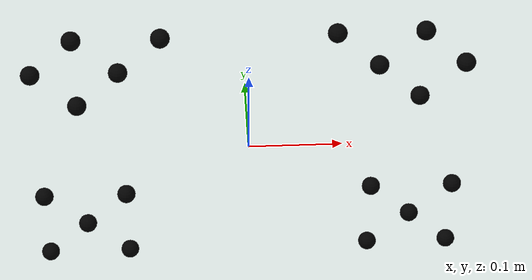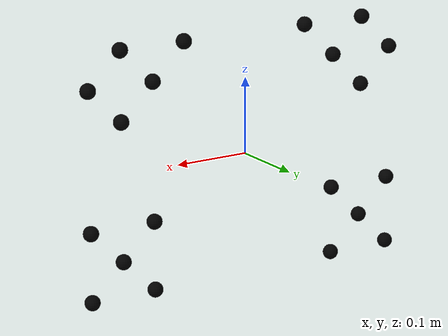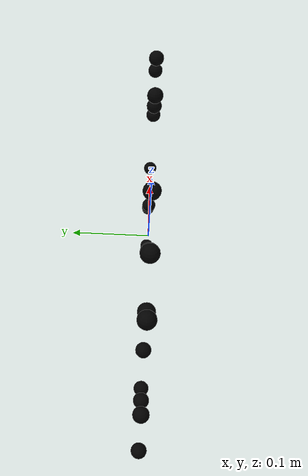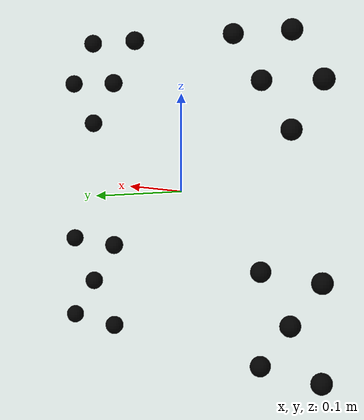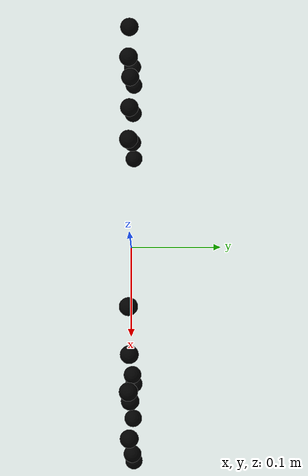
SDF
<?xml version="1.0" ?>
<sdf version="1.6">
  <model name="bolt_target">

    <link name="A1">
      <pose>-0.18 0 0.1575 0 0 0</pose>
      <collision name="collision"><geometry><sphere><radius>0.01</radius></sphere></geometry></collision>
      <visual name="visual"><geometry><sphere><radius>0.01</radius></sphere></geometry>
      <material><ambient>0 0 0 1</ambient><diffuse>0 0 0 1</diffuse><specular>0 0 0 0</specular><emissive>1.0 0.2 0.2 1</emissive></material>
      </visual>
    </link>

    <link name="A2">
      <pose>-0.09 0 0.1575 0 0 0</pose>
      <collision name="collision"><geometry><sphere><radius>0.01</radius></sphere></geometry></collision>
      <visual name="visual"><geometry><sphere><radius>0.01</radius></sphere></geometry>  <material><ambient>0 0 0 1</ambient><diffuse>0 0 0 1</diffuse><specular>0 0 0 0</specular><emissive>1.0 0.2 0.2 1</emissive></material>
      </visual>
    </link>

    <link name="A3">
      <pose>-0.225 0 0.1125 0 0 0</pose>
      <collision name="collision"><geometry><sphere><radius>0.01</radius></sphere></geometry></collision>
      <visual name="visual"><geometry><sphere><radius>0.01</radius></sphere></geometry>  <material><ambient>0 0 0 1</ambient><diffuse>0 0 0 1</diffuse><specular>0 0 0 0</specular><emissive>1.0 0.2 0.2 1</emissive></material>
      </visual>
    </link>

    <link name="A4">
      <pose>-0.135 0 0.1125 0 0 0</pose>
      <collision name="collision"><geometry><sphere><radius>0.01</radius></sphere></geometry></collision>
      <visual name="visual"><geometry><sphere><radius>0.01</radius></sphere></geometry>  <material><ambient>0 0 0 1</ambient><diffuse>0 0 0 1</diffuse><specular>0 0 0 0</specular><emissive>1.0 0.2 0.2 1</emissive></material>
      </visual>
    </link>

    <link name="A5">
      <pose>-0.18 0 0.0675 0 0 0</pose>
      <collision name="collision"><geometry><sphere><radius>0.01</radius></sphere></geometry></collision>
      <visual name="visual"><geometry><sphere><radius>0.01</radius></sphere></geometry>  <material><ambient>0 0 0 1</ambient><diffuse>0 0 0 1</diffuse><specular>0 0 0 0</specular><emissive>1.0 0.2 0.2 1</emissive></material>
      </visual>
    </link>

    <link name="B1">
      <pose>0.09 0 0.1575 0 0 0</pose>
      <collision name="collision"><geometry><sphere><radius>0.01</radius></sphere></geometry></collision>
      <visual name="visual"><geometry><sphere><radius>0.01</radius></sphere></geometry>  <material><ambient>0 0 0 1</ambient><diffuse>0 0 0 1</diffuse><specular>0 0 0 0</specular><emissive>1.0 0.2 0.2 1</emissive></material>
      </visual>
    </link>

    <link name="B2">
      <pose>0.18 0 0.1575 0 0 0</pose>
      <collision name="collision"><geometry><sphere><radius>0.01</radius></sphere></geometry></collision>
      <visual name="visual"><geometry><sphere><radius>0.01</radius></sphere></geometry>  <material><ambient>0 0 0 1</ambient><diffuse>0 0 0 1</diffuse><specular>0 0 0 0</specular><emissive>1.0 0.2 0.2 1</emissive></material>
      </visual>
    </link>

    <link name="B3">
      <pose>0.135 0 0.1125 0 0 0</pose>
      <collision name="collision"><geometry><sphere><radius>0.01</radius></sphere></geometry></collision>
      <visual name="visual"><geometry><sphere><radius>0.01</radius></sphere></geometry>  <material><ambient>0 0 0 1</ambient><diffuse>0 0 0 1</diffuse><specular>0 0 0 0</specular><emissive>1.0 0.2 0.2 1</emissive></material>
      </visual>
    </link>

    <link name="B4">
      <pose>0.225 0 0.1125 0 0 0</pose>
      <collision name="collision"><geometry><sphere><radius>0.01</radius></sphere></geometry></collision>
      <visual name="visual"><geometry><sphere><radius>0.01</radius></sphere></geometry>  <material><ambient>0 0 0 1</ambient><diffuse>0 0 0 1</diffuse><specular>0 0 0 0</specular><emissive>1.0 0.2 0.2 1</emissive></material>
      </visual>
    </link>

    <link name="B5">
      <pose>0.18 0 0.0675 0 0 0</pose>
      <collision name="collision"><geometry><sphere><radius>0.01</radius></sphere></geometry></collision>
      <visual name="visual"><geometry><sphere><radius>0.01</radius></sphere></geometry>  <material><ambient>0 0 0 1</ambient><diffuse>0 0 0 1</diffuse><specular>0 0 0 0</specular><emissive>1.0 0.2 0.2 1</emissive></material>
      </visual>
    </link>

    <link name="C1">
      <pose>-0.225 0 -0.0675 0 0 0</pose>
      <collision name="collision"><geometry><sphere><radius>0.01</radius></sphere></geometry></collision>
      <visual name="visual"><geometry><sphere><radius>0.01</radius></sphere></geometry>  <material><ambient>0 0 0 1</ambient><diffuse>0 0 0 1</diffuse><specular>0 0 0 0</specular><emissive>1.0 0.2 0.2 1</emissive></material>
      </visual>
    </link>

    <link name="C2">
      <pose>-0.135 0 -0.0675 0 0 0</pose>
      <collision name="collision"><geometry><sphere><radius>0.01</radius></sphere></geometry></collision>
      <visual name="visual"><geometry><sphere><radius>0.01</radius></sphere></geometry>  <material><ambient>0 0 0 1</ambient><diffuse>0 0 0 1</diffuse><specular>0 0 0 0</specular><emissive>1.0 0.2 0.2 1</emissive></material>
      </visual>
    </link>

    <link name="C3">
      <pose>-0.18 0 -0.1125 0 0 0</pose>
      <collision name="collision"><geometry><sphere><radius>0.01</radius></sphere></geometry></collision>
      <visual name="visual"><geometry><sphere><radius>0.01</radius></sphere></geometry>  <material><ambient>0 0 0 1</ambient><diffuse>0 0 0 1</diffuse><specular>0 0 0 0</specular><emissive>1.0 0.2 0.2 1</emissive></material>
      </visual>
    </link>

    <link name="C4">
      <pose>-0.225 0 -0.1575 0 0 0</pose>
      <collision name="collision"><geometry><sphere><radius>0.01</radius></sphere></geometry></collision>
      <visual name="visual"><geometry><sphere><radius>0.01</radius></sphere></geometry>  <material><ambient>0 0 0 1</ambient><diffuse>0 0 0 1</diffuse><specular>0 0 0 0</specular><emissive>1.0 0.2 0.2 1</emissive></material>
      </visual>
    </link>

    <link name="C5">
      <pose>-0.135 0 -0.1575 0 0 0</pose>
      <collision name="collision"><geometry><sphere><radius>0.01</radius></sphere></geometry></collision>
      <visual name="visual"><geometry><sphere><radius>0.01</radius></sphere></geometry>  <material><ambient>0 0 0 1</ambient><diffuse>0 0 0 1</diffuse><specular>0 0 0 0</specular><emissive>1.0 0.2 0.2 1</emissive></material>
      </visual>
    </link>

    <link name="D1">
      <pose>0.135 0 -0.0675 0 0 0</pose>
      <collision name="collision"><geometry><sphere><radius>0.01</radius></sphere></geometry></collision>
      <visual name="visual"><geometry><sphere><radius>0.01</radius></sphere></geometry>  <material><ambient>0 0 0 1</ambient><diffuse>0 0 0 1</diffuse><specular>0 0 0 0</specular><emissive>1.0 0.2 0.2 1</emissive></material>
      </visual>
    </link>

    <link name="D2">
      <pose>0.225 0 -0.0675 0 0 0</pose>
      <collision name="collision"><geometry><sphere><radius>0.01</radius></sphere></geometry></collision>
      <visual name="visual"><geometry><sphere><radius>0.01</radius></sphere></geometry>  <material><ambient>0 0 0 1</ambient><diffuse>0 0 0 1</diffuse><specular>0 0 0 0</specular><emissive>1.0 0.2 0.2 1</emissive></material>
      </visual>
    </link>

    <link name="D3">
      <pose>0.18 0 -0.1125 0 0 0</pose>
      <collision name="collision"><geometry><sphere><radius>0.01</radius></sphere></geometry></collision>
      <visual name="visual"><geometry><sphere><radius>0.01</radius></sphere></geometry>  <material><ambient>0 0 0 1</ambient><diffuse>0 0 0 1</diffuse><specular>0 0 0 0</specular><emissive>1.0 0.2 0.2 1</emissive></material>
      </visual>
    </link>

    <link name="D4">
      <pose>0.135 0 -0.1575 0 0 0</pose>
      <collision name="collision"><geometry><sphere><radius>0.01</radius></sphere></geometry></collision>
      <visual name="visual"><geometry><sphere><radius>0.01</radius></sphere></geometry>  <material><ambient>0 0 0 1</ambient><diffuse>0 0 0 1</diffuse><specular>0 0 0 0</specular><emissive>1.0 0.2 0.2 1</emissive></material>
      </visual>
    </link>

    <link name="D5">
      <pose>0.225 0 -0.1575 0 0 0</pose>
      <collision name="collision"><geometry><sphere><radius>0.01</radius></sphere></geometry></collision>
      <visual name="visual"><geometry><sphere><radius>0.01</radius></sphere></geometry>  <material><ambient>0 0 0 1</ambient><diffuse>0 0 0 1</diffuse><specular>0 0 0 0</specular><emissive>1.0 0.2 0.2 1</emissive></material>
      </visual>
    </link>

  </model>
</sdf>
